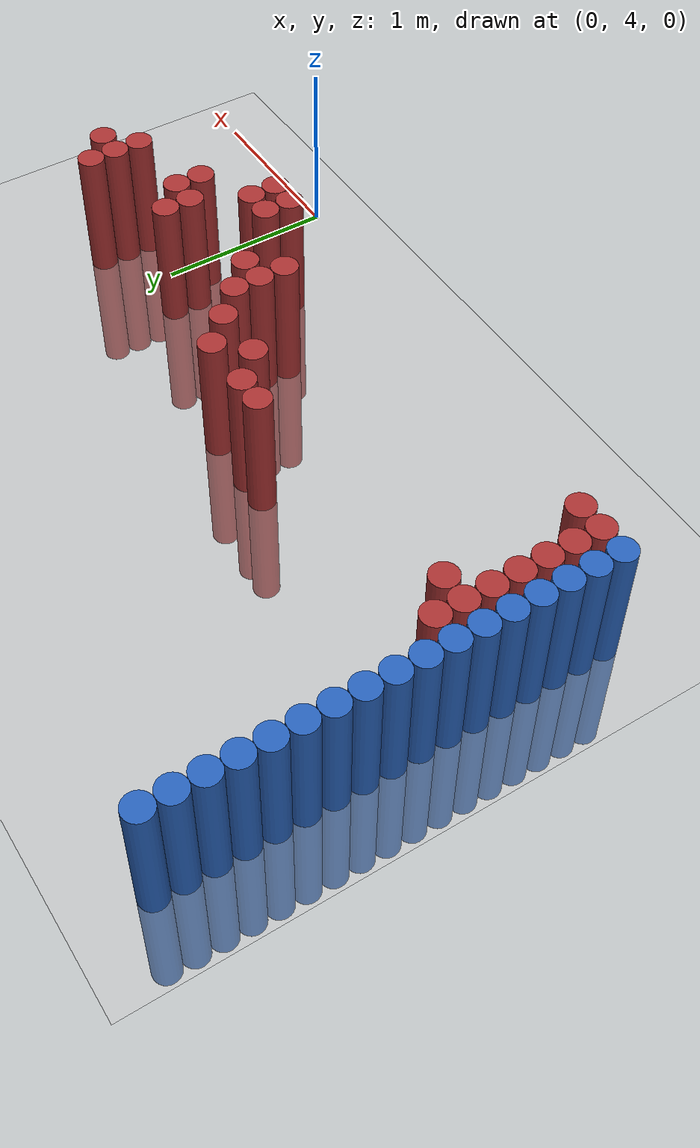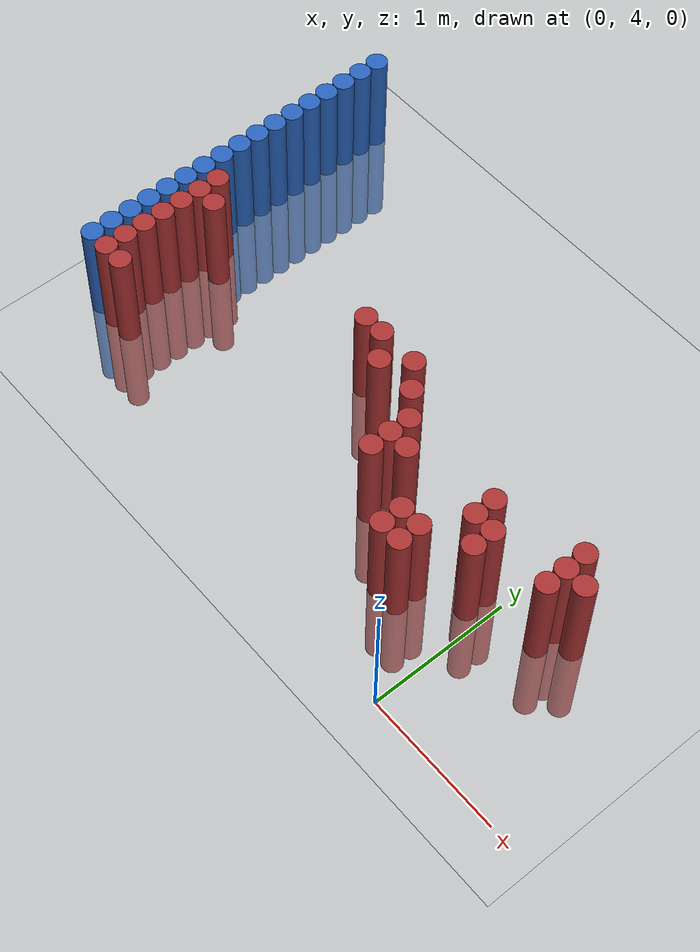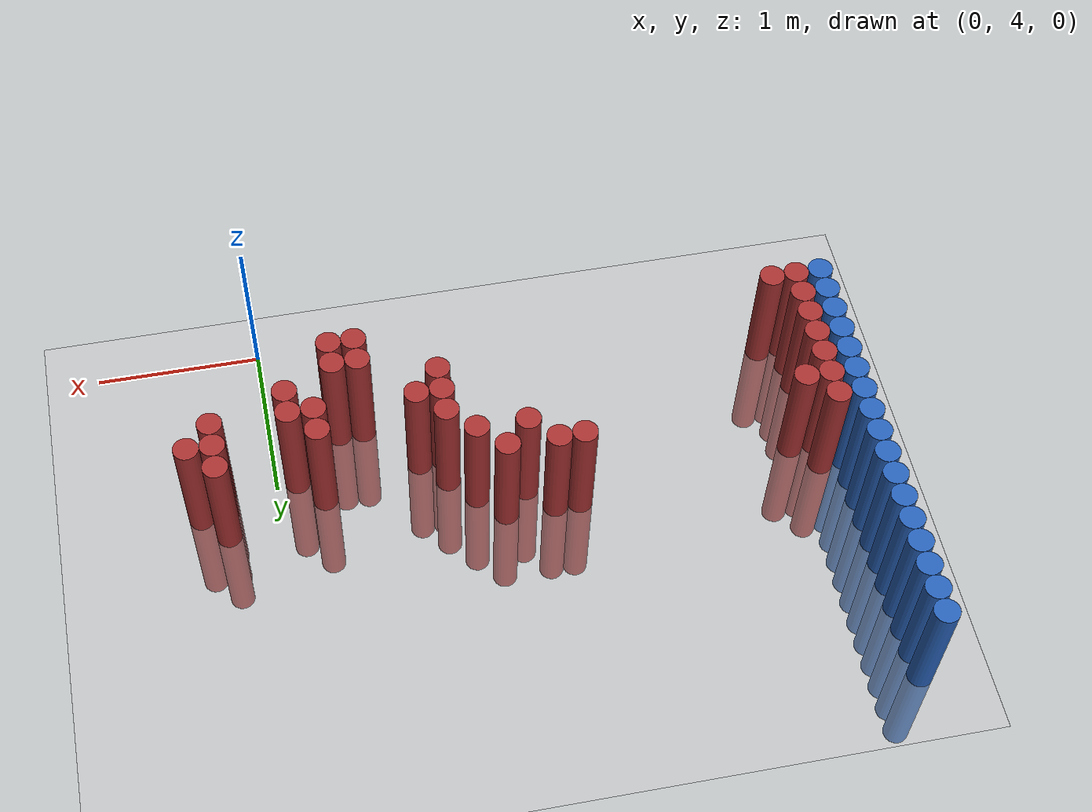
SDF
<sdf version="1.6">
 <world name="default">
  <model name="ground_plane">
   <static>1</static>
   <link name="link">
    <collision name="collision">
     <geometry><plane><normal>0 0 1</normal><size>100 100</size></plane></geometry>
     <surface><friction><ode><mu>100</mu><mu2>50</mu2></ode></friction></surface>
    </collision>
    <visual name="visual">
     <cast_shadows>0</cast_shadows>
     <geometry><plane><normal>0 0 1</normal><size>100 100</size></plane></geometry>
     <material>
      <script><uri>file://media/materials/scripts/gazebo.material</uri><name>Gazebo/Grey</name></script>
     </material>
    </visual>
   </link>
  </model>
  <model name="unit_cylinder_177">
   <static>1</static>
   <pose>-3.425000 4.675000 0.000000 0.000000 0.000000 0.000000</pose>
   <link name="link">
    <inertial>
     <mass>1</mass>
     <inertia><ixx>0.145833</ixx><ixy>0</ixy><ixz>0</ixz><iyy>0.145833</iyy><iyz>0</iyz><izz>0.125</izz></inertia>
    </inertial>
    <collision name="collision">
     <geometry><cylinder><radius>0.075000</radius><length>1.5</length></cylinder></geometry>
    </collision>
    <visual name="visual">
     <geometry><cylinder><radius>0.075000</radius><length>1.5</length></cylinder></geometry>
     <material>
      <ambient>0.152000 0.379000 0.720000 1</ambient>
      <diffuse>0.152000 0.379000 0.720000 1</diffuse>
     </material>
     <material>
      <script><name>Gazebo/Grey</name><uri>file://media/materials/scripts/gazebo.material</uri></script>
     </material>
    </visual>
   </link>
  </model>
  <model name="unit_cylinder_179">
   <static>1</static>
   <pose>-3.425000 4.825000 0.000000 0.000000 0.000000 0.000000</pose>
   <link name="link">
    <inertial>
     <mass>1</mass>
     <inertia><ixx>0.145833</ixx><ixy>0</ixy><ixz>0</ixz><iyy>0.145833</iyy><iyz>0</iyz><izz>0.125</izz></inertia>
    </inertial>
    <collision name="collision">
     <geometry><cylinder><radius>0.075000</radius><length>1.5</length></cylinder></geometry>
    </collision>
    <visual name="visual">
     <geometry><cylinder><radius>0.075000</radius><length>1.5</length></cylinder></geometry>
     <material>
      <ambient>0.152000 0.379000 0.720000 1</ambient>
      <diffuse>0.152000 0.379000 0.720000 1</diffuse>
     </material>
     <material>
      <script><name>Gazebo/Grey</name><uri>file://media/materials/scripts/gazebo.material</uri></script>
     </material>
    </visual>
   </link>
  </model>
  <model name="unit_cylinder_181">
   <static>1</static>
   <pose>-3.425000 4.975000 0.000000 0.000000 0.000000 0.000000</pose>
   <link name="link">
    <inertial>
     <mass>1</mass>
     <inertia><ixx>0.145833</ixx><ixy>0</ixy><ixz>0</ixz><iyy>0.145833</iyy><iyz>0</iyz><izz>0.125</izz></inertia>
    </inertial>
    <collision name="collision">
     <geometry><cylinder><radius>0.075000</radius><length>1.5</length></cylinder></geometry>
    </collision>
    <visual name="visual">
     <geometry><cylinder><radius>0.075000</radius><length>1.5</length></cylinder></geometry>
     <material>
      <ambient>0.152000 0.379000 0.720000 1</ambient>
      <diffuse>0.152000 0.379000 0.720000 1</diffuse>
     </material>
     <material>
      <script><name>Gazebo/Grey</name><uri>file://media/materials/scripts/gazebo.material</uri></script>
     </material>
    </visual>
   </link>
  </model>
  <model name="unit_cylinder_183">
   <static>1</static>
   <pose>-3.425000 5.125000 0.000000 0.000000 0.000000 0.000000</pose>
   <link name="link">
    <inertial>
     <mass>1</mass>
     <inertia><ixx>0.145833</ixx><ixy>0</ixy><ixz>0</ixz><iyy>0.145833</iyy><iyz>0</iyz><izz>0.125</izz></inertia>
    </inertial>
    <collision name="collision">
     <geometry><cylinder><radius>0.075000</radius><length>1.5</length></cylinder></geometry>
    </collision>
    <visual name="visual">
     <geometry><cylinder><radius>0.075000</radius><length>1.5</length></cylinder></geometry>
     <material>
      <ambient>0.152000 0.379000 0.720000 1</ambient>
      <diffuse>0.152000 0.379000 0.720000 1</diffuse>
     </material>
     <material>
      <script><name>Gazebo/Grey</name><uri>file://media/materials/scripts/gazebo.material</uri></script>
     </material>
    </visual>
   </link>
  </model>
  <model name="unit_cylinder_185">
   <static>1</static>
   <pose>-3.425000 5.275000 0.000000 0.000000 0.000000 0.000000</pose>
   <link name="link">
    <inertial>
     <mass>1</mass>
     <inertia><ixx>0.145833</ixx><ixy>0</ixy><ixz>0</ixz><iyy>0.145833</iyy><iyz>0</iyz><izz>0.125</izz></inertia>
    </inertial>
    <collision name="collision">
     <geometry><cylinder><radius>0.075000</radius><length>1.5</length></cylinder></geometry>
    </collision>
    <visual name="visual">
     <geometry><cylinder><radius>0.075000</radius><length>1.5</length></cylinder></geometry>
     <material>
      <ambient>0.152000 0.379000 0.720000 1</ambient>
      <diffuse>0.152000 0.379000 0.720000 1</diffuse>
     </material>
     <material>
      <script><name>Gazebo/Grey</name><uri>file://media/materials/scripts/gazebo.material</uri></script>
     </material>
    </visual>
   </link>
  </model>
  <model name="unit_cylinder_187">
   <static>1</static>
   <pose>-3.425000 5.425000 0.000000 0.000000 0.000000 0.000000</pose>
   <link name="link">
    <inertial>
     <mass>1</mass>
     <inertia><ixx>0.145833</ixx><ixy>0</ixy><ixz>0</ixz><iyy>0.145833</iyy><iyz>0</iyz><izz>0.125</izz></inertia>
    </inertial>
    <collision name="collision">
     <geometry><cylinder><radius>0.075000</radius><length>1.5</length></cylinder></geometry>
    </collision>
    <visual name="visual">
     <geometry><cylinder><radius>0.075000</radius><length>1.5</length></cylinder></geometry>
     <material>
      <ambient>0.152000 0.379000 0.720000 1</ambient>
      <diffuse>0.152000 0.379000 0.720000 1</diffuse>
     </material>
     <material>
      <script><name>Gazebo/Grey</name><uri>file://media/materials/scripts/gazebo.material</uri></script>
     </material>
    </visual>
   </link>
  </model>
  <model name="unit_cylinder_189">
   <static>1</static>
   <pose>-3.425000 5.575000 0.000000 0.000000 0.000000 0.000000</pose>
   <link name="link">
    <inertial>
     <mass>1</mass>
     <inertia><ixx>0.145833</ixx><ixy>0</ixy><ixz>0</ixz><iyy>0.145833</iyy><iyz>0</iyz><izz>0.125</izz></inertia>
    </inertial>
    <collision name="collision">
     <geometry><cylinder><radius>0.075000</radius><length>1.5</length></cylinder></geometry>
    </collision>
    <visual name="visual">
     <geometry><cylinder><radius>0.075000</radius><length>1.5</length></cylinder></geometry>
     <material>
      <ambient>0.152000 0.379000 0.720000 1</ambient>
      <diffuse>0.152000 0.379000 0.720000 1</diffuse>
     </material>
     <material>
      <script><name>Gazebo/Grey</name><uri>file://media/materials/scripts/gazebo.material</uri></script>
     </material>
    </visual>
   </link>
  </model>
  <model name="unit_cylinder_191">
   <static>1</static>
   <pose>-3.425000 5.725000 0.000000 0.000000 0.000000 0.000000</pose>
   <link name="link">
    <inertial>
     <mass>1</mass>
     <inertia><ixx>0.145833</ixx><ixy>0</ixy><ixz>0</ixz><iyy>0.145833</iyy><iyz>0</iyz><izz>0.125</izz></inertia>
    </inertial>
    <collision name="collision">
     <geometry><cylinder><radius>0.075000</radius><length>1.5</length></cylinder></geometry>
    </collision>
    <visual name="visual">
     <geometry><cylinder><radius>0.075000</radius><length>1.5</length></cylinder></geometry>
     <material>
      <ambient>0.152000 0.379000 0.720000 1</ambient>
      <diffuse>0.152000 0.379000 0.720000 1</diffuse>
     </material>
     <material>
      <script><name>Gazebo/Grey</name><uri>file://media/materials/scripts/gazebo.material</uri></script>
     </material>
    </visual>
   </link>
  </model>
  <model name="unit_cylinder_193">
   <static>1</static>
   <pose>-3.425000 5.875000 0.000000 0.000000 0.000000 0.000000</pose>
   <link name="link">
    <inertial>
     <mass>1</mass>
     <inertia><ixx>0.145833</ixx><ixy>0</ixy><ixz>0</ixz><iyy>0.145833</iyy><iyz>0</iyz><izz>0.125</izz></inertia>
    </inertial>
    <collision name="collision">
     <geometry><cylinder><radius>0.075000</radius><length>1.5</length></cylinder></geometry>
    </collision>
    <visual name="visual">
     <geometry><cylinder><radius>0.075000</radius><length>1.5</length></cylinder></geometry>
     <material>
      <ambient>0.152000 0.379000 0.720000 1</ambient>
      <diffuse>0.152000 0.379000 0.720000 1</diffuse>
     </material>
     <material>
      <script><name>Gazebo/Grey</name><uri>file://media/materials/scripts/gazebo.material</uri></script>
     </material>
    </visual>
   </link>
  </model>
  <model name="unit_cylinder_195">
   <static>1</static>
   <pose>-3.425000 6.025000 0.000000 0.000000 0.000000 0.000000</pose>
   <link name="link">
    <inertial>
     <mass>1</mass>
     <inertia><ixx>0.145833</ixx><ixy>0</ixy><ixz>0</ixz><iyy>0.145833</iyy><iyz>0</iyz><izz>0.125</izz></inertia>
    </inertial>
    <collision name="collision">
     <geometry><cylinder><radius>0.075000</radius><length>1.5</length></cylinder></geometry>
    </collision>
    <visual name="visual">
     <geometry><cylinder><radius>0.075000</radius><length>1.5</length></cylinder></geometry>
     <material>
      <ambient>0.152000 0.379000 0.720000 1</ambient>
      <diffuse>0.152000 0.379000 0.720000 1</diffuse>
     </material>
     <material>
      <script><name>Gazebo/Grey</name><uri>file://media/materials/scripts/gazebo.material</uri></script>
     </material>
    </visual>
   </link>
  </model>
  <model name="unit_cylinder_197">
   <static>1</static>
   <pose>-3.425000 6.175000 0.000000 0.000000 0.000000 0.000000</pose>
   <link name="link">
    <inertial>
     <mass>1</mass>
     <inertia><ixx>0.145833</ixx><ixy>0</ixy><ixz>0</ixz><iyy>0.145833</iyy><iyz>0</iyz><izz>0.125</izz></inertia>
    </inertial>
    <collision name="collision">
     <geometry><cylinder><radius>0.075000</radius><length>1.5</length></cylinder></geometry>
    </collision>
    <visual name="visual">
     <geometry><cylinder><radius>0.075000</radius><length>1.5</length></cylinder></geometry>
     <material>
      <ambient>0.152000 0.379000 0.720000 1</ambient>
      <diffuse>0.152000 0.379000 0.720000 1</diffuse>
     </material>
     <material>
      <script><name>Gazebo/Grey</name><uri>file://media/materials/scripts/gazebo.material</uri></script>
     </material>
    </visual>
   </link>
  </model>
  <model name="unit_cylinder_199">
   <static>1</static>
   <pose>-3.425000 6.325000 0.000000 0.000000 0.000000 0.000000</pose>
   <link name="link">
    <inertial>
     <mass>1</mass>
     <inertia><ixx>0.145833</ixx><ixy>0</ixy><ixz>0</ixz><iyy>0.145833</iyy><iyz>0</iyz><izz>0.125</izz></inertia>
    </inertial>
    <collision name="collision">
     <geometry><cylinder><radius>0.075000</radius><length>1.5</length></cylinder></geometry>
    </collision>
    <visual name="visual">
     <geometry><cylinder><radius>0.075000</radius><length>1.5</length></cylinder></geometry>
     <material>
      <ambient>0.152000 0.379000 0.720000 1</ambient>
      <diffuse>0.152000 0.379000 0.720000 1</diffuse>
     </material>
     <material>
      <script><name>Gazebo/Grey</name><uri>file://media/materials/scripts/gazebo.material</uri></script>
     </material>
    </visual>
   </link>
  </model>
  <model name="unit_cylinder_201">
   <static>1</static>
   <pose>-3.425000 6.475000 0.000000 0.000000 0.000000 0.000000</pose>
   <link name="link">
    <inertial>
     <mass>1</mass>
     <inertia><ixx>0.145833</ixx><ixy>0</ixy><ixz>0</ixz><iyy>0.145833</iyy><iyz>0</iyz><izz>0.125</izz></inertia>
    </inertial>
    <collision name="collision">
     <geometry><cylinder><radius>0.075000</radius><length>1.5</length></cylinder></geometry>
    </collision>
    <visual name="visual">
     <geometry><cylinder><radius>0.075000</radius><length>1.5</length></cylinder></geometry>
     <material>
      <ambient>0.152000 0.379000 0.720000 1</ambient>
      <diffuse>0.152000 0.379000 0.720000 1</diffuse>
     </material>
     <material>
      <script><name>Gazebo/Grey</name><uri>file://media/materials/scripts/gazebo.material</uri></script>
     </material>
    </visual>
   </link>
  </model>
  <model name="unit_cylinder_203">
   <static>1</static>
   <pose>-3.425000 6.625000 0.000000 0.000000 0.000000 0.000000</pose>
   <link name="link">
    <inertial>
     <mass>1</mass>
     <inertia><ixx>0.145833</ixx><ixy>0</ixy><ixz>0</ixz><iyy>0.145833</iyy><iyz>0</iyz><izz>0.125</izz></inertia>
    </inertial>
    <collision name="collision">
     <geometry><cylinder><radius>0.075000</radius><length>1.5</length></cylinder></geometry>
    </collision>
    <visual name="visual">
     <geometry><cylinder><radius>0.075000</radius><length>1.5</length></cylinder></geometry>
     <material>
      <ambient>0.152000 0.379000 0.720000 1</ambient>
      <diffuse>0.152000 0.379000 0.720000 1</diffuse>
     </material>
     <material>
      <script><name>Gazebo/Grey</name><uri>file://media/materials/scripts/gazebo.material</uri></script>
     </material>
    </visual>
   </link>
  </model>
  <model name="unit_cylinder_205">
   <static>1</static>
   <pose>-3.425000 6.775000 0.000000 0.000000 0.000000 0.000000</pose>
   <link name="link">
    <inertial>
     <mass>1</mass>
     <inertia><ixx>0.145833</ixx><ixy>0</ixy><ixz>0</ixz><iyy>0.145833</iyy><iyz>0</iyz><izz>0.125</izz></inertia>
    </inertial>
    <collision name="collision">
     <geometry><cylinder><radius>0.075000</radius><length>1.5</length></cylinder></geometry>
    </collision>
    <visual name="visual">
     <geometry><cylinder><radius>0.075000</radius><length>1.5</length></cylinder></geometry>
     <material>
      <ambient>0.152000 0.379000 0.720000 1</ambient>
      <diffuse>0.152000 0.379000 0.720000 1</diffuse>
     </material>
     <material>
      <script><name>Gazebo/Grey</name><uri>file://media/materials/scripts/gazebo.material</uri></script>
     </material>
    </visual>
   </link>
  </model>
  <model name="unit_cylinder_207">
   <static>1</static>
   <pose>-3.425000 6.925000 0.000000 0.000000 0.000000 0.000000</pose>
   <link name="link">
    <inertial>
     <mass>1</mass>
     <inertia><ixx>0.145833</ixx><ixy>0</ixy><ixz>0</ixz><iyy>0.145833</iyy><iyz>0</iyz><izz>0.125</izz></inertia>
    </inertial>
    <collision name="collision">
     <geometry><cylinder><radius>0.075000</radius><length>1.5</length></cylinder></geometry>
    </collision>
    <visual name="visual">
     <geometry><cylinder><radius>0.075000</radius><length>1.5</length></cylinder></geometry>
     <material>
      <ambient>0.152000 0.379000 0.720000 1</ambient>
      <diffuse>0.152000 0.379000 0.720000 1</diffuse>
     </material>
     <material>
      <script><name>Gazebo/Grey</name><uri>file://media/materials/scripts/gazebo.material</uri></script>
     </material>
    </visual>
   </link>
  </model>
  <model name="unit_cylinder_251">
   <static>1</static>
   <pose>-3.425000 4.525000 0.000000 0.000000 0.000000 0.000000</pose>
   <link name="link">
    <inertial>
     <mass>1</mass>
     <inertia><ixx>0.145833</ixx><ixy>0</ixy><ixz>0</ixz><iyy>0.145833</iyy><iyz>0</iyz><izz>0.125</izz></inertia>
    </inertial>
    <collision name="collision">
     <geometry><cylinder><radius>0.075000</radius><length>1.5</length></cylinder></geometry>
    </collision>
    <visual name="visual">
     <geometry><cylinder><radius>0.075000</radius><length>1.5</length></cylinder></geometry>
     <material>
      <ambient>0.152000 0.379000 0.720000 1</ambient>
      <diffuse>0.152000 0.379000 0.720000 1</diffuse>
     </material>
     <material>
      <script><name>Gazebo/Grey</name><uri>file://media/materials/scripts/gazebo.material</uri></script>
     </material>
    </visual>
   </link>
  </model>
  <model name="unit_cylinder_252">
   <static>1</static>
   <pose>-3.425000 4.675000 0.000000 0.000000 0.000000 0.000000</pose>
   <link name="link">
    <inertial>
     <mass>1</mass>
     <inertia><ixx>0.145833</ixx><ixy>0</ixy><ixz>0</ixz><iyy>0.145833</iyy><iyz>0</iyz><izz>0.125</izz></inertia>
    </inertial>
    <collision name="collision">
     <geometry><cylinder><radius>0.075000</radius><length>1.5</length></cylinder></geometry>
    </collision>
    <visual name="visual">
     <geometry><cylinder><radius>0.075000</radius><length>1.5</length></cylinder></geometry>
     <material>
      <ambient>0.152000 0.379000 0.720000 1</ambient>
      <diffuse>0.152000 0.379000 0.720000 1</diffuse>
     </material>
     <material>
      <script><name>Gazebo/Grey</name><uri>file://media/materials/scripts/gazebo.material</uri></script>
     </material>
    </visual>
   </link>
  </model>
  <model name="unit_cylinder_253">
   <static>1</static>
   <pose>-3.425000 4.825000 0.000000 0.000000 0.000000 0.000000</pose>
   <link name="link">
    <inertial>
     <mass>1</mass>
     <inertia><ixx>0.145833</ixx><ixy>0</ixy><ixz>0</ixz><iyy>0.145833</iyy><iyz>0</iyz><izz>0.125</izz></inertia>
    </inertial>
    <collision name="collision">
     <geometry><cylinder><radius>0.075000</radius><length>1.5</length></cylinder></geometry>
    </collision>
    <visual name="visual">
     <geometry><cylinder><radius>0.075000</radius><length>1.5</length></cylinder></geometry>
     <material>
      <ambient>0.152000 0.379000 0.720000 1</ambient>
      <diffuse>0.152000 0.379000 0.720000 1</diffuse>
     </material>
     <material>
      <script><name>Gazebo/Grey</name><uri>file://media/materials/scripts/gazebo.material</uri></script>
     </material>
    </visual>
   </link>
  </model>
  <model name="unit_cylinder_254">
   <static>1</static>
   <pose>-3.425000 4.975000 0.000000 0.000000 0.000000 0.000000</pose>
   <link name="link">
    <inertial>
     <mass>1</mass>
     <inertia><ixx>0.145833</ixx><ixy>0</ixy><ixz>0</ixz><iyy>0.145833</iyy><iyz>0</iyz><izz>0.125</izz></inertia>
    </inertial>
    <collision name="collision">
     <geometry><cylinder><radius>0.075000</radius><length>1.5</length></cylinder></geometry>
    </collision>
    <visual name="visual">
     <geometry><cylinder><radius>0.075000</radius><length>1.5</length></cylinder></geometry>
     <material>
      <ambient>0.152000 0.379000 0.720000 1</ambient>
      <diffuse>0.152000 0.379000 0.720000 1</diffuse>
     </material>
     <material>
      <script><name>Gazebo/Grey</name><uri>file://media/materials/scripts/gazebo.material</uri></script>
     </material>
    </visual>
   </link>
  </model>
  <model name="unit_cylinder_255">
   <static>1</static>
   <pose>-3.425000 5.125000 0.000000 0.000000 0.000000 0.000000</pose>
   <link name="link">
    <inertial>
     <mass>1</mass>
     <inertia><ixx>0.145833</ixx><ixy>0</ixy><ixz>0</ixz><iyy>0.145833</iyy><iyz>0</iyz><izz>0.125</izz></inertia>
    </inertial>
    <collision name="collision">
     <geometry><cylinder><radius>0.075000</radius><length>1.5</length></cylinder></geometry>
    </collision>
    <visual name="visual">
     <geometry><cylinder><radius>0.075000</radius><length>1.5</length></cylinder></geometry>
     <material>
      <ambient>0.152000 0.379000 0.720000 1</ambient>
      <diffuse>0.152000 0.379000 0.720000 1</diffuse>
     </material>
     <material>
      <script><name>Gazebo/Grey</name><uri>file://media/materials/scripts/gazebo.material</uri></script>
     </material>
    </visual>
   </link>
  </model>
  <model name="unit_cylinder_256">
   <static>1</static>
   <pose>-3.425000 5.275000 0.000000 0.000000 0.000000 0.000000</pose>
   <link name="link">
    <inertial>
     <mass>1</mass>
     <inertia><ixx>0.145833</ixx><ixy>0</ixy><ixz>0</ixz><iyy>0.145833</iyy><iyz>0</iyz><izz>0.125</izz></inertia>
    </inertial>
    <collision name="collision">
     <geometry><cylinder><radius>0.075000</radius><length>1.5</length></cylinder></geometry>
    </collision>
    <visual name="visual">
     <geometry><cylinder><radius>0.075000</radius><length>1.5</length></cylinder></geometry>
     <material>
      <ambient>0.152000 0.379000 0.720000 1</ambient>
      <diffuse>0.152000 0.379000 0.720000 1</diffuse>
     </material>
     <material>
      <script><name>Gazebo/Grey</name><uri>file://media/materials/scripts/gazebo.material</uri></script>
     </material>
    </visual>
   </link>
  </model>
  <model name="unit_cylinder_257">
   <static>1</static>
   <pose>-3.425000 5.425000 0.000000 0.000000 0.000000 0.000000</pose>
   <link name="link">
    <inertial>
     <mass>1</mass>
     <inertia><ixx>0.145833</ixx><ixy>0</ixy><ixz>0</ixz><iyy>0.145833</iyy><iyz>0</iyz><izz>0.125</izz></inertia>
    </inertial>
    <collision name="collision">
     <geometry><cylinder><radius>0.075000</radius><length>1.5</length></cylinder></geometry>
    </collision>
    <visual name="visual">
     <geometry><cylinder><radius>0.075000</radius><length>1.5</length></cylinder></geometry>
     <material>
      <ambient>0.152000 0.379000 0.720000 1</ambient>
      <diffuse>0.152000 0.379000 0.720000 1</diffuse>
     </material>
     <material>
      <script><name>Gazebo/Grey</name><uri>file://media/materials/scripts/gazebo.material</uri></script>
     </material>
    </visual>
   </link>
  </model>
  <model name="unit_cylinder_283">
   <static>1</static>
   <pose>-3.275000 4.525000 0.000000 0.000000 0.000000 0.000000</pose>
   <link name="link">
    <inertial>
     <mass>1</mass>
     <inertia><ixx>0.145833</ixx><ixy>0</ixy><ixz>0</ixz><iyy>0.145833</iyy><iyz>0</iyz><izz>0.125</izz></inertia>
    </inertial>
    <collision name="collision">
     <geometry><cylinder><radius>0.075000</radius><length>1.5</length></cylinder></geometry>
    </collision>
    <visual name="visual">
     <geometry><cylinder><radius>0.075000</radius><length>1.5</length></cylinder></geometry>
     <material>
      <ambient>0.648000 0.192000 0.192000 1</ambient>
      <diffuse>0.648000 0.192000 0.192000 1</diffuse>
     </material>
     <material>
      <script><name>Gazebo/Grey</name><uri>file://media/materials/scripts/gazebo.material</uri></script>
     </material>
    </visual>
   </link>
  </model>
  <model name="unit_cylinder_284">
   <static>1</static>
   <pose>-3.275000 4.675000 0.000000 0.000000 0.000000 0.000000</pose>
   <link name="link">
    <inertial>
     <mass>1</mass>
     <inertia><ixx>0.145833</ixx><ixy>0</ixy><ixz>0</ixz><iyy>0.145833</iyy><iyz>0</iyz><izz>0.125</izz></inertia>
    </inertial>
    <collision name="collision">
     <geometry><cylinder><radius>0.075000</radius><length>1.5</length></cylinder></geometry>
    </collision>
    <visual name="visual">
     <geometry><cylinder><radius>0.075000</radius><length>1.5</length></cylinder></geometry>
     <material>
      <ambient>0.648000 0.192000 0.192000 1</ambient>
      <diffuse>0.648000 0.192000 0.192000 1</diffuse>
     </material>
     <material>
      <script><name>Gazebo/Grey</name><uri>file://media/materials/scripts/gazebo.material</uri></script>
     </material>
    </visual>
   </link>
  </model>
  <model name="unit_cylinder_285">
   <static>1</static>
   <pose>-3.275000 4.825000 0.000000 0.000000 0.000000 0.000000</pose>
   <link name="link">
    <inertial>
     <mass>1</mass>
     <inertia><ixx>0.145833</ixx><ixy>0</ixy><ixz>0</ixz><iyy>0.145833</iyy><iyz>0</iyz><izz>0.125</izz></inertia>
    </inertial>
    <collision name="collision">
     <geometry><cylinder><radius>0.075000</radius><length>1.5</length></cylinder></geometry>
    </collision>
    <visual name="visual">
     <geometry><cylinder><radius>0.075000</radius><length>1.5</length></cylinder></geometry>
     <material>
      <ambient>0.648000 0.192000 0.192000 1</ambient>
      <diffuse>0.648000 0.192000 0.192000 1</diffuse>
     </material>
     <material>
      <script><name>Gazebo/Grey</name><uri>file://media/materials/scripts/gazebo.material</uri></script>
     </material>
    </visual>
   </link>
  </model>
  <model name="unit_cylinder_286">
   <static>1</static>
   <pose>-3.275000 4.975000 0.000000 0.000000 0.000000 0.000000</pose>
   <link name="link">
    <inertial>
     <mass>1</mass>
     <inertia><ixx>0.145833</ixx><ixy>0</ixy><ixz>0</ixz><iyy>0.145833</iyy><iyz>0</iyz><izz>0.125</izz></inertia>
    </inertial>
    <collision name="collision">
     <geometry><cylinder><radius>0.075000</radius><length>1.5</length></cylinder></geometry>
    </collision>
    <visual name="visual">
     <geometry><cylinder><radius>0.075000</radius><length>1.5</length></cylinder></geometry>
     <material>
      <ambient>0.648000 0.192000 0.192000 1</ambient>
      <diffuse>0.648000 0.192000 0.192000 1</diffuse>
     </material>
     <material>
      <script><name>Gazebo/Grey</name><uri>file://media/materials/scripts/gazebo.material</uri></script>
     </material>
    </visual>
   </link>
  </model>
  <model name="unit_cylinder_287">
   <static>1</static>
   <pose>-3.275000 5.125000 0.000000 0.000000 0.000000 0.000000</pose>
   <link name="link">
    <inertial>
     <mass>1</mass>
     <inertia><ixx>0.145833</ixx><ixy>0</ixy><ixz>0</ixz><iyy>0.145833</iyy><iyz>0</iyz><izz>0.125</izz></inertia>
    </inertial>
    <collision name="collision">
     <geometry><cylinder><radius>0.075000</radius><length>1.5</length></cylinder></geometry>
    </collision>
    <visual name="visual">
     <geometry><cylinder><radius>0.075000</radius><length>1.5</length></cylinder></geometry>
     <material>
      <ambient>0.648000 0.192000 0.192000 1</ambient>
      <diffuse>0.648000 0.192000 0.192000 1</diffuse>
     </material>
     <material>
      <script><name>Gazebo/Grey</name><uri>file://media/materials/scripts/gazebo.material</uri></script>
     </material>
    </visual>
   </link>
  </model>
  <model name="unit_cylinder_288">
   <static>1</static>
   <pose>-3.275000 5.275000 0.000000 0.000000 0.000000 0.000000</pose>
   <link name="link">
    <inertial>
     <mass>1</mass>
     <inertia><ixx>0.145833</ixx><ixy>0</ixy><ixz>0</ixz><iyy>0.145833</iyy><iyz>0</iyz><izz>0.125</izz></inertia>
    </inertial>
    <collision name="collision">
     <geometry><cylinder><radius>0.075000</radius><length>1.5</length></cylinder></geometry>
    </collision>
    <visual name="visual">
     <geometry><cylinder><radius>0.075000</radius><length>1.5</length></cylinder></geometry>
     <material>
      <ambient>0.648000 0.192000 0.192000 1</ambient>
      <diffuse>0.648000 0.192000 0.192000 1</diffuse>
     </material>
     <material>
      <script><name>Gazebo/Grey</name><uri>file://media/materials/scripts/gazebo.material</uri></script>
     </material>
    </visual>
   </link>
  </model>
  <model name="unit_cylinder_289">
   <static>1</static>
   <pose>-3.275000 5.425000 0.000000 0.000000 0.000000 0.000000</pose>
   <link name="link">
    <inertial>
     <mass>1</mass>
     <inertia><ixx>0.145833</ixx><ixy>0</ixy><ixz>0</ixz><iyy>0.145833</iyy><iyz>0</iyz><izz>0.125</izz></inertia>
    </inertial>
    <collision name="collision">
     <geometry><cylinder><radius>0.075000</radius><length>1.5</length></cylinder></geometry>
    </collision>
    <visual name="visual">
     <geometry><cylinder><radius>0.075000</radius><length>1.5</length></cylinder></geometry>
     <material>
      <ambient>0.648000 0.192000 0.192000 1</ambient>
      <diffuse>0.648000 0.192000 0.192000 1</diffuse>
     </material>
     <material>
      <script><name>Gazebo/Grey</name><uri>file://media/materials/scripts/gazebo.material</uri></script>
     </material>
    </visual>
   </link>
  </model>
  <model name="unit_cylinder_295">
   <static>1</static>
   <pose>-3.125000 4.525000 0.000000 0.000000 0.000000 0.000000</pose>
   <link name="link">
    <inertial>
     <mass>1</mass>
     <inertia><ixx>0.145833</ixx><ixy>0</ixy><ixz>0</ixz><iyy>0.145833</iyy><iyz>0</iyz><izz>0.125</izz></inertia>
    </inertial>
    <collision name="collision">
     <geometry><cylinder><radius>0.075000</radius><length>1.5</length></cylinder></geometry>
    </collision>
    <visual name="visual">
     <geometry><cylinder><radius>0.075000</radius><length>1.5</length></cylinder></geometry>
     <material>
      <ambient>0.648000 0.192000 0.192000 1</ambient>
      <diffuse>0.648000 0.192000 0.192000 1</diffuse>
     </material>
     <material>
      <script><name>Gazebo/Grey</name><uri>file://media/materials/scripts/gazebo.material</uri></script>
     </material>
    </visual>
   </link>
  </model>
  <model name="unit_cylinder_296">
   <static>1</static>
   <pose>-3.125000 5.275000 0.000000 0.000000 0.000000 0.000000</pose>
   <link name="link">
    <inertial>
     <mass>1</mass>
     <inertia><ixx>0.145833</ixx><ixy>0</ixy><ixz>0</ixz><iyy>0.145833</iyy><iyz>0</iyz><izz>0.125</izz></inertia>
    </inertial>
    <collision name="collision">
     <geometry><cylinder><radius>0.075000</radius><length>1.5</length></cylinder></geometry>
    </collision>
    <visual name="visual">
     <geometry><cylinder><radius>0.075000</radius><length>1.5</length></cylinder></geometry>
     <material>
      <ambient>0.648000 0.192000 0.192000 1</ambient>
      <diffuse>0.648000 0.192000 0.192000 1</diffuse>
     </material>
     <material>
      <script><name>Gazebo/Grey</name><uri>file://media/materials/scripts/gazebo.material</uri></script>
     </material>
    </visual>
   </link>
  </model>
  <model name="unit_cylinder_343">
   <static>1</static>
   <pose>-1.775000 5.425000 0.000000 0.000000 0.000000 0.000000</pose>
   <link name="link">
    <inertial>
     <mass>1</mass>
     <inertia><ixx>0.145833</ixx><ixy>0</ixy><ixz>0</ixz><iyy>0.145833</iyy><iyz>0</iyz><izz>0.125</izz></inertia>
    </inertial>
    <collision name="collision">
     <geometry><cylinder><radius>0.075000</radius><length>1.5</length></cylinder></geometry>
    </collision>
    <visual name="visual">
     <geometry><cylinder><radius>0.075000</radius><length>1.5</length></cylinder></geometry>
     <material>
      <ambient>0.648000 0.192000 0.192000 1</ambient>
      <diffuse>0.648000 0.192000 0.192000 1</diffuse>
     </material>
     <material>
      <script><name>Gazebo/Grey</name><uri>file://media/materials/scripts/gazebo.material</uri></script>
     </material>
    </visual>
   </link>
  </model>
  <model name="unit_cylinder_347">
   <static>1</static>
   <pose>-1.625000 5.425000 0.000000 0.000000 0.000000 0.000000</pose>
   <link name="link">
    <inertial>
     <mass>1</mass>
     <inertia><ixx>0.145833</ixx><ixy>0</ixy><ixz>0</ixz><iyy>0.145833</iyy><iyz>0</iyz><izz>0.125</izz></inertia>
    </inertial>
    <collision name="collision">
     <geometry><cylinder><radius>0.075000</radius><length>1.5</length></cylinder></geometry>
    </collision>
    <visual name="visual">
     <geometry><cylinder><radius>0.075000</radius><length>1.5</length></cylinder></geometry>
     <material>
      <ambient>0.648000 0.192000 0.192000 1</ambient>
      <diffuse>0.648000 0.192000 0.192000 1</diffuse>
     </material>
     <material>
      <script><name>Gazebo/Grey</name><uri>file://media/materials/scripts/gazebo.material</uri></script>
     </material>
    </visual>
   </link>
  </model>
  <model name="unit_cylinder_353">
   <static>1</static>
   <pose>-1.475000 5.275000 0.000000 0.000000 0.000000 0.000000</pose>
   <link name="link">
    <inertial>
     <mass>1</mass>
     <inertia><ixx>0.145833</ixx><ixy>0</ixy><ixz>0</ixz><iyy>0.145833</iyy><iyz>0</iyz><izz>0.125</izz></inertia>
    </inertial>
    <collision name="collision">
     <geometry><cylinder><radius>0.075000</radius><length>1.5</length></cylinder></geometry>
    </collision>
    <visual name="visual">
     <geometry><cylinder><radius>0.075000</radius><length>1.5</length></cylinder></geometry>
     <material>
      <ambient>0.648000 0.192000 0.192000 1</ambient>
      <diffuse>0.648000 0.192000 0.192000 1</diffuse>
     </material>
     <material>
      <script><name>Gazebo/Grey</name><uri>file://media/materials/scripts/gazebo.material</uri></script>
     </material>
    </visual>
   </link>
  </model>
  <model name="unit_cylinder_358">
   <static>1</static>
   <pose>-1.325000 5.425000 0.000000 0.000000 0.000000 0.000000</pose>
   <link name="link">
    <inertial>
     <mass>1</mass>
     <inertia><ixx>0.145833</ixx><ixy>0</ixy><ixz>0</ixz><iyy>0.145833</iyy><iyz>0</iyz><izz>0.125</izz></inertia>
    </inertial>
    <collision name="collision">
     <geometry><cylinder><radius>0.075000</radius><length>1.5</length></cylinder></geometry>
    </collision>
    <visual name="visual">
     <geometry><cylinder><radius>0.075000</radius><length>1.5</length></cylinder></geometry>
     <material>
      <ambient>0.648000 0.192000 0.192000 1</ambient>
      <diffuse>0.648000 0.192000 0.192000 1</diffuse>
     </material>
     <material>
      <script><name>Gazebo/Grey</name><uri>file://media/materials/scripts/gazebo.material</uri></script>
     </material>
    </visual>
   </link>
  </model>
  <model name="unit_cylinder_361">
   <static>1</static>
   <pose>-1.175000 5.275000 0.000000 0.000000 0.000000 0.000000</pose>
   <link name="link">
    <inertial>
     <mass>1</mass>
     <inertia><ixx>0.145833</ixx><ixy>0</ixy><ixz>0</ixz><iyy>0.145833</iyy><iyz>0</iyz><izz>0.125</izz></inertia>
    </inertial>
    <collision name="collision">
     <geometry><cylinder><radius>0.075000</radius><length>1.5</length></cylinder></geometry>
    </collision>
    <visual name="visual">
     <geometry><cylinder><radius>0.075000</radius><length>1.5</length></cylinder></geometry>
     <material>
      <ambient>0.648000 0.192000 0.192000 1</ambient>
      <diffuse>0.648000 0.192000 0.192000 1</diffuse>
     </material>
     <material>
      <script><name>Gazebo/Grey</name><uri>file://media/materials/scripts/gazebo.material</uri></script>
     </material>
    </visual>
   </link>
  </model>
  <model name="unit_cylinder_362">
   <static>1</static>
   <pose>-1.025000 4.825000 0.000000 0.000000 0.000000 0.000000</pose>
   <link name="link">
    <inertial>
     <mass>1</mass>
     <inertia><ixx>0.145833</ixx><ixy>0</ixy><ixz>0</ixz><iyy>0.145833</iyy><iyz>0</iyz><izz>0.125</izz></inertia>
    </inertial>
    <collision name="collision">
     <geometry><cylinder><radius>0.075000</radius><length>1.5</length></cylinder></geometry>
    </collision>
    <visual name="visual">
     <geometry><cylinder><radius>0.075000</radius><length>1.5</length></cylinder></geometry>
     <material>
      <ambient>0.648000 0.192000 0.192000 1</ambient>
      <diffuse>0.648000 0.192000 0.192000 1</diffuse>
     </material>
     <material>
      <script><name>Gazebo/Grey</name><uri>file://media/materials/scripts/gazebo.material</uri></script>
     </material>
    </visual>
   </link>
  </model>
  <model name="unit_cylinder_363">
   <static>1</static>
   <pose>-1.025000 4.975000 0.000000 0.000000 0.000000 0.000000</pose>
   <link name="link">
    <inertial>
     <mass>1</mass>
     <inertia><ixx>0.145833</ixx><ixy>0</ixy><ixz>0</ixz><iyy>0.145833</iyy><iyz>0</iyz><izz>0.125</izz></inertia>
    </inertial>
    <collision name="collision">
     <geometry><cylinder><radius>0.075000</radius><length>1.5</length></cylinder></geometry>
    </collision>
    <visual name="visual">
     <geometry><cylinder><radius>0.075000</radius><length>1.5</length></cylinder></geometry>
     <material>
      <ambient>0.648000 0.192000 0.192000 1</ambient>
      <diffuse>0.648000 0.192000 0.192000 1</diffuse>
     </material>
     <material>
      <script><name>Gazebo/Grey</name><uri>file://media/materials/scripts/gazebo.material</uri></script>
     </material>
    </visual>
   </link>
  </model>
  <model name="unit_cylinder_364">
   <static>1</static>
   <pose>-1.025000 5.125000 0.000000 0.000000 0.000000 0.000000</pose>
   <link name="link">
    <inertial>
     <mass>1</mass>
     <inertia><ixx>0.145833</ixx><ixy>0</ixy><ixz>0</ixz><iyy>0.145833</iyy><iyz>0</iyz><izz>0.125</izz></inertia>
    </inertial>
    <collision name="collision">
     <geometry><cylinder><radius>0.075000</radius><length>1.5</length></cylinder></geometry>
    </collision>
    <visual name="visual">
     <geometry><cylinder><radius>0.075000</radius><length>1.5</length></cylinder></geometry>
     <material>
      <ambient>0.648000 0.192000 0.192000 1</ambient>
      <diffuse>0.648000 0.192000 0.192000 1</diffuse>
     </material>
     <material>
      <script><name>Gazebo/Grey</name><uri>file://media/materials/scripts/gazebo.material</uri></script>
     </material>
    </visual>
   </link>
  </model>
  <model name="unit_cylinder_365">
   <static>1</static>
   <pose>-0.875000 4.975000 0.000000 0.000000 0.000000 0.000000</pose>
   <link name="link">
    <inertial>
     <mass>1</mass>
     <inertia><ixx>0.145833</ixx><ixy>0</ixy><ixz>0</ixz><iyy>0.145833</iyy><iyz>0</iyz><izz>0.125</izz></inertia>
    </inertial>
    <collision name="collision">
     <geometry><cylinder><radius>0.075000</radius><length>1.5</length></cylinder></geometry>
    </collision>
    <visual name="visual">
     <geometry><cylinder><radius>0.075000</radius><length>1.5</length></cylinder></geometry>
     <material>
      <ambient>0.648000 0.192000 0.192000 1</ambient>
      <diffuse>0.648000 0.192000 0.192000 1</diffuse>
     </material>
     <material>
      <script><name>Gazebo/Grey</name><uri>file://media/materials/scripts/gazebo.material</uri></script>
     </material>
    </visual>
   </link>
  </model>
  <model name="unit_cylinder_370">
   <static>1</static>
   <pose>-0.575000 4.525000 0.000000 0.000000 0.000000 0.000000</pose>
   <link name="link">
    <inertial>
     <mass>1</mass>
     <inertia><ixx>0.145833</ixx><ixy>0</ixy><ixz>0</ixz><iyy>0.145833</iyy><iyz>0</iyz><izz>0.125</izz></inertia>
    </inertial>
    <collision name="collision">
     <geometry><cylinder><radius>0.075000</radius><length>1.5</length></cylinder></geometry>
    </collision>
    <visual name="visual">
     <geometry><cylinder><radius>0.075000</radius><length>1.5</length></cylinder></geometry>
     <material>
      <ambient>0.648000 0.192000 0.192000 1</ambient>
      <diffuse>0.648000 0.192000 0.192000 1</diffuse>
     </material>
     <material>
      <script><name>Gazebo/Grey</name><uri>file://media/materials/scripts/gazebo.material</uri></script>
     </material>
    </visual>
   </link>
  </model>
  <model name="unit_cylinder_371">
   <static>1</static>
   <pose>-0.575000 4.675000 0.000000 0.000000 0.000000 0.000000</pose>
   <link name="link">
    <inertial>
     <mass>1</mass>
     <inertia><ixx>0.145833</ixx><ixy>0</ixy><ixz>0</ixz><iyy>0.145833</iyy><iyz>0</iyz><izz>0.125</izz></inertia>
    </inertial>
    <collision name="collision">
     <geometry><cylinder><radius>0.075000</radius><length>1.5</length></cylinder></geometry>
    </collision>
    <visual name="visual">
     <geometry><cylinder><radius>0.075000</radius><length>1.5</length></cylinder></geometry>
     <material>
      <ambient>0.648000 0.192000 0.192000 1</ambient>
      <diffuse>0.648000 0.192000 0.192000 1</diffuse>
     </material>
     <material>
      <script><name>Gazebo/Grey</name><uri>file://media/materials/scripts/gazebo.material</uri></script>
     </material>
    </visual>
   </link>
  </model>
  <model name="unit_cylinder_379">
   <static>1</static>
   <pose>-0.425000 4.525000 0.000000 0.000000 0.000000 0.000000</pose>
   <link name="link">
    <inertial>
     <mass>1</mass>
     <inertia><ixx>0.145833</ixx><ixy>0</ixy><ixz>0</ixz><iyy>0.145833</iyy><iyz>0</iyz><izz>0.125</izz></inertia>
    </inertial>
    <collision name="collision">
     <geometry><cylinder><radius>0.075000</radius><length>1.5</length></cylinder></geometry>
    </collision>
    <visual name="visual">
     <geometry><cylinder><radius>0.075000</radius><length>1.5</length></cylinder></geometry>
     <material>
      <ambient>0.648000 0.192000 0.192000 1</ambient>
      <diffuse>0.648000 0.192000 0.192000 1</diffuse>
     </material>
     <material>
      <script><name>Gazebo/Grey</name><uri>file://media/materials/scripts/gazebo.material</uri></script>
     </material>
    </visual>
   </link>
  </model>
  <model name="unit_cylinder_380">
   <static>1</static>
   <pose>-0.425000 4.675000 0.000000 0.000000 0.000000 0.000000</pose>
   <link name="link">
    <inertial>
     <mass>1</mass>
     <inertia><ixx>0.145833</ixx><ixy>0</ixy><ixz>0</ixz><iyy>0.145833</iyy><iyz>0</iyz><izz>0.125</izz></inertia>
    </inertial>
    <collision name="collision">
     <geometry><cylinder><radius>0.075000</radius><length>1.5</length></cylinder></geometry>
    </collision>
    <visual name="visual">
     <geometry><cylinder><radius>0.075000</radius><length>1.5</length></cylinder></geometry>
     <material>
      <ambient>0.648000 0.192000 0.192000 1</ambient>
      <diffuse>0.648000 0.192000 0.192000 1</diffuse>
     </material>
     <material>
      <script><name>Gazebo/Grey</name><uri>file://media/materials/scripts/gazebo.material</uri></script>
     </material>
    </visual>
   </link>
  </model>
  <model name="unit_cylinder_388">
   <static>1</static>
   <pose>-0.275000 4.975000 0.000000 0.000000 0.000000 0.000000</pose>
   <link name="link">
    <inertial>
     <mass>1</mass>
     <inertia><ixx>0.145833</ixx><ixy>0</ixy><ixz>0</ixz><iyy>0.145833</iyy><iyz>0</iyz><izz>0.125</izz></inertia>
    </inertial>
    <collision name="collision">
     <geometry><cylinder><radius>0.075000</radius><length>1.5</length></cylinder></geometry>
    </collision>
    <visual name="visual">
     <geometry><cylinder><radius>0.075000</radius><length>1.5</length></cylinder></geometry>
     <material>
      <ambient>0.648000 0.192000 0.192000 1</ambient>
      <diffuse>0.648000 0.192000 0.192000 1</diffuse>
     </material>
     <material>
      <script><name>Gazebo/Grey</name><uri>file://media/materials/scripts/gazebo.material</uri></script>
     </material>
    </visual>
   </link>
  </model>
  <model name="unit_cylinder_389">
   <static>1</static>
   <pose>-0.275000 5.125000 0.000000 0.000000 0.000000 0.000000</pose>
   <link name="link">
    <inertial>
     <mass>1</mass>
     <inertia><ixx>0.145833</ixx><ixy>0</ixy><ixz>0</ixz><iyy>0.145833</iyy><iyz>0</iyz><izz>0.125</izz></inertia>
    </inertial>
    <collision name="collision">
     <geometry><cylinder><radius>0.075000</radius><length>1.5</length></cylinder></geometry>
    </collision>
    <visual name="visual">
     <geometry><cylinder><radius>0.075000</radius><length>1.5</length></cylinder></geometry>
     <material>
      <ambient>0.648000 0.192000 0.192000 1</ambient>
      <diffuse>0.648000 0.192000 0.192000 1</diffuse>
     </material>
     <material>
      <script><name>Gazebo/Grey</name><uri>file://media/materials/scripts/gazebo.material</uri></script>
     </material>
    </visual>
   </link>
  </model>
  <model name="unit_cylinder_396">
   <static>1</static>
   <pose>-0.125000 4.825000 0.000000 0.000000 0.000000 0.000000</pose>
   <link name="link">
    <inertial>
     <mass>1</mass>
     <inertia><ixx>0.145833</ixx><ixy>0</ixy><ixz>0</ixz><iyy>0.145833</iyy><iyz>0</iyz><izz>0.125</izz></inertia>
    </inertial>
    <collision name="collision">
     <geometry><cylinder><radius>0.075000</radius><length>1.5</length></cylinder></geometry>
    </collision>
    <visual name="visual">
     <geometry><cylinder><radius>0.075000</radius><length>1.5</length></cylinder></geometry>
     <material>
      <ambient>0.648000 0.192000 0.192000 1</ambient>
      <diffuse>0.648000 0.192000 0.192000 1</diffuse>
     </material>
     <material>
      <script><name>Gazebo/Grey</name><uri>file://media/materials/scripts/gazebo.material</uri></script>
     </material>
    </visual>
   </link>
  </model>
  <model name="unit_cylinder_397">
   <static>1</static>
   <pose>-0.125000 4.975000 0.000000 0.000000 0.000000 0.000000</pose>
   <link name="link">
    <inertial>
     <mass>1</mass>
     <inertia><ixx>0.145833</ixx><ixy>0</ixy><ixz>0</ixz><iyy>0.145833</iyy><iyz>0</iyz><izz>0.125</izz></inertia>
    </inertial>
    <collision name="collision">
     <geometry><cylinder><radius>0.075000</radius><length>1.5</length></cylinder></geometry>
    </collision>
    <visual name="visual">
     <geometry><cylinder><radius>0.075000</radius><length>1.5</length></cylinder></geometry>
     <material>
      <ambient>0.648000 0.192000 0.192000 1</ambient>
      <diffuse>0.648000 0.192000 0.192000 1</diffuse>
     </material>
     <material>
      <script><name>Gazebo/Grey</name><uri>file://media/materials/scripts/gazebo.material</uri></script>
     </material>
    </visual>
   </link>
  </model>
  <model name="unit_cylinder_400">
   <static>1</static>
   <pose>0.325000 4.975000 0.000000 0.000000 0.000000 0.000000</pose>
   <link name="link">
    <inertial>
     <mass>1</mass>
     <inertia><ixx>0.145833</ixx><ixy>0</ixy><ixz>0</ixz><iyy>0.145833</iyy><iyz>0</iyz><izz>0.125</izz></inertia>
    </inertial>
    <collision name="collision">
     <geometry><cylinder><radius>0.075000</radius><length>1.5</length></cylinder></geometry>
    </collision>
    <visual name="visual">
     <geometry><cylinder><radius>0.075000</radius><length>1.5</length></cylinder></geometry>
     <material>
      <ambient>0.648000 0.192000 0.192000 1</ambient>
      <diffuse>0.648000 0.192000 0.192000 1</diffuse>
     </material>
     <material>
      <script><name>Gazebo/Grey</name><uri>file://media/materials/scripts/gazebo.material</uri></script>
     </material>
    </visual>
   </link>
  </model>
  <model name="unit_cylinder_401">
   <static>1</static>
   <pose>0.325000 5.125000 0.000000 0.000000 0.000000 0.000000</pose>
   <link name="link">
    <inertial>
     <mass>1</mass>
     <inertia><ixx>0.145833</ixx><ixy>0</ixy><ixz>0</ixz><iyy>0.145833</iyy><iyz>0</iyz><izz>0.125</izz></inertia>
    </inertial>
    <collision name="collision">
     <geometry><cylinder><radius>0.075000</radius><length>1.5</length></cylinder></geometry>
    </collision>
    <visual name="visual">
     <geometry><cylinder><radius>0.075000</radius><length>1.5</length></cylinder></geometry>
     <material>
      <ambient>0.648000 0.192000 0.192000 1</ambient>
      <diffuse>0.648000 0.192000 0.192000 1</diffuse>
     </material>
     <material>
      <script><name>Gazebo/Grey</name><uri>file://media/materials/scripts/gazebo.material</uri></script>
     </material>
    </visual>
   </link>
  </model>
  <model name="unit_cylinder_402">
   <static>1</static>
   <pose>0.325000 5.275000 0.000000 0.000000 0.000000 0.000000</pose>
   <link name="link">
    <inertial>
     <mass>1</mass>
     <inertia><ixx>0.145833</ixx><ixy>0</ixy><ixz>0</ixz><iyy>0.145833</iyy><iyz>0</iyz><izz>0.125</izz></inertia>
    </inertial>
    <collision name="collision">
     <geometry><cylinder><radius>0.075000</radius><length>1.5</length></cylinder></geometry>
    </collision>
    <visual name="visual">
     <geometry><cylinder><radius>0.075000</radius><length>1.5</length></cylinder></geometry>
     <material>
      <ambient>0.648000 0.192000 0.192000 1</ambient>
      <diffuse>0.648000 0.192000 0.192000 1</diffuse>
     </material>
     <material>
      <script><name>Gazebo/Grey</name><uri>file://media/materials/scripts/gazebo.material</uri></script>
     </material>
    </visual>
   </link>
  </model>
  <model name="unit_cylinder_409">
   <static>1</static>
   <pose>0.475000 5.125000 0.000000 0.000000 0.000000 0.000000</pose>
   <link name="link">
    <inertial>
     <mass>1</mass>
     <inertia><ixx>0.145833</ixx><ixy>0</ixy><ixz>0</ixz><iyy>0.145833</iyy><iyz>0</iyz><izz>0.125</izz></inertia>
    </inertial>
    <collision name="collision">
     <geometry><cylinder><radius>0.075000</radius><length>1.5</length></cylinder></geometry>
    </collision>
    <visual name="visual">
     <geometry><cylinder><radius>0.075000</radius><length>1.5</length></cylinder></geometry>
     <material>
      <ambient>0.648000 0.192000 0.192000 1</ambient>
      <diffuse>0.648000 0.192000 0.192000 1</diffuse>
     </material>
     <material>
      <script><name>Gazebo/Grey</name><uri>file://media/materials/scripts/gazebo.material</uri></script>
     </material>
    </visual>
   </link>
  </model>
 </world>
</sdf>
